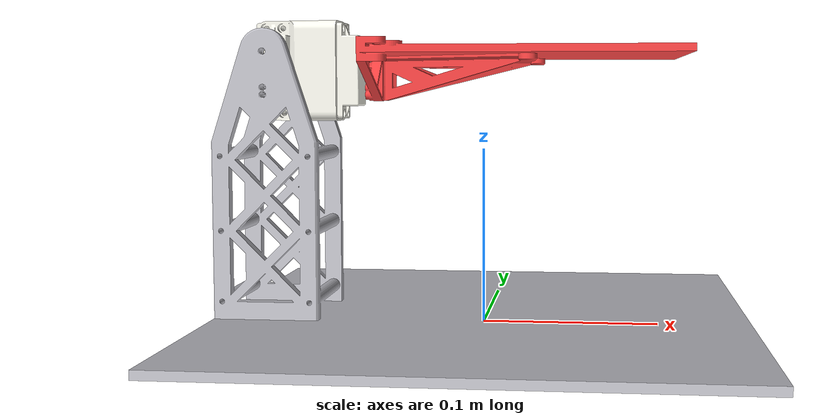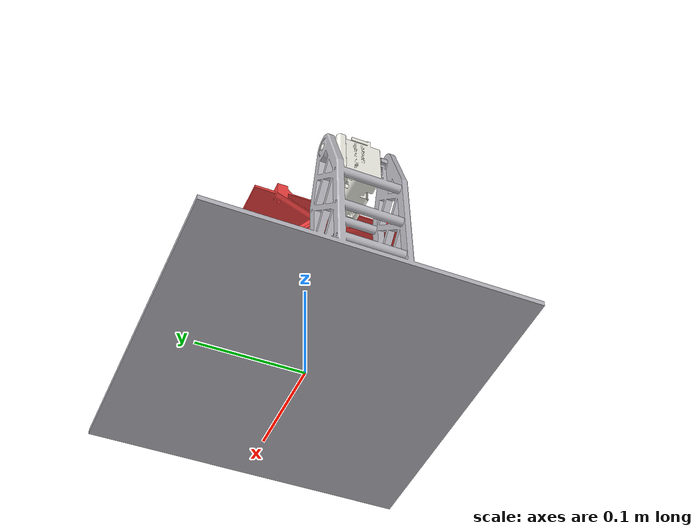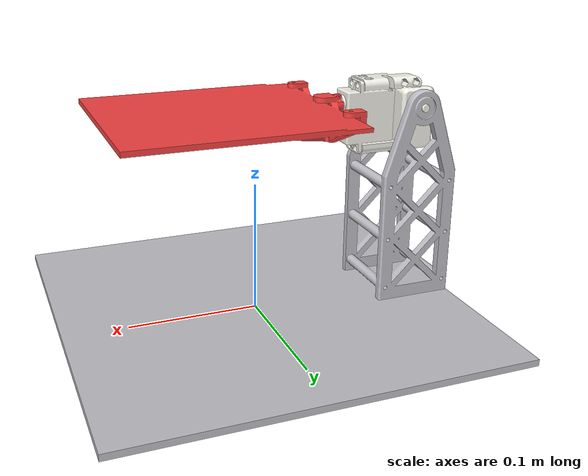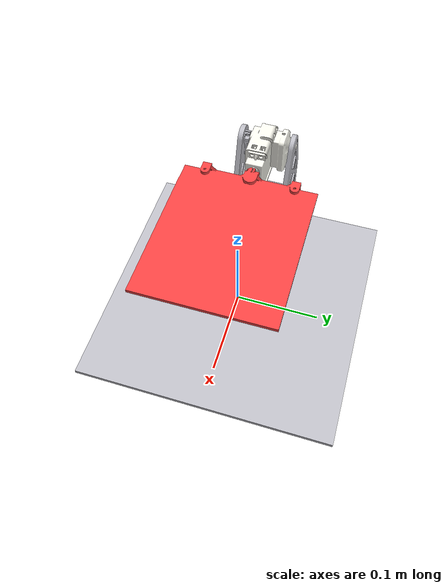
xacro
<?xml version="1.0" ?>
<robot name="assembly_v3" xmlns:xacro="http://www.ros.org/wiki/xacro">

<xacro:include filename="$(find assembly_v3_description)/urdf/materials.xacro" />
<xacro:include filename="$(find assembly_v3_description)/urdf/assembly_v3.trans" />
<xacro:include filename="$(find assembly_v3_description)/urdf/assembly_v3.gazebo" />
<link name="base_link">
  <inertial>
    <origin xyz="-0.018038652100304704 -0.00017758954956431254 0.013671035490042092" rpy="0 0 0"/>
    <mass value="4.157460190208279"/>
    <inertia ixx="0.031263" iyy="0.038664" izz="0.061354" ixy="-7.5e-05" iyz="9.2e-05" ixz="0.004735"/>
  </inertial>
  <visual>
    <origin xyz="0 0 0" rpy="0 0 0"/>
    <geometry>
      <mesh filename="package://assembly_v3_description/meshes/base_link.stl" scale="0.001 0.001 0.001"/>
    </geometry>
    <material name="mdf_board"/>
  </visual>
  <collision>
    <origin xyz="0 0 0" rpy="0 0 0"/>
    <geometry>
      <mesh filename="package://assembly_v3_description/meshes/base_link.stl" scale="0.001 0.001 0.001"/>
    </geometry>
  </collision>
</link>

<link name="link1_1">
  <inertial>
    <origin xyz="0.014426984058842046 -0.026318821878323344 -0.010199402470144114" rpy="0 0 0"/>
    <mass value="0.2597469748599181"/>
    <inertia ixx="0.000119" iyy="0.000143" izz="0.000101" ixy="2.2e-05" iyz="-2e-06" ixz="1e-06"/>
  </inertial>
  <visual>
    <origin xyz="0.12 -0.0268 -0.155" rpy="0 0 0"/>
    <geometry>
      <mesh filename="package://assembly_v3_description/meshes/link1_1.stl" scale="0.001 0.001 0.001"/>
    </geometry>
    <material name="nylon_66_bianco"/>
  </visual>
  <collision>
    <origin xyz="0.12 -0.0268 -0.155" rpy="0 0 0"/>
    <geometry>
      <mesh filename="package://assembly_v3_description/meshes/link1_1.stl" scale="0.001 0.001 0.001"/>
    </geometry>
  </collision>
</link>

<link name="link2_1">
  <inertial>
    <origin xyz="0.07149085455262151 3.217555747561489e-07 -0.002123257140632745" rpy="0 0 0"/>
    <mass value="0.3365868455209291"/>
    <inertia ixx="0.00053" iyy="0.000999" izz="0.001508" ixy="0.0" iyz="0.0" ixz="-3.8e-05"/>
  </inertial>
  <visual>
    <origin xyz="0.0645 0.002749 -0.155" rpy="0 0 0"/>
    <geometry>
      <mesh filename="package://assembly_v3_description/meshes/link2_1.stl" scale="0.001 0.001 0.001"/>
    </geometry>
    <material name="opaque2476666"/>
  </visual>
  <collision>
    <origin xyz="0.0645 0.002749 -0.155" rpy="0 0 0"/>
    <geometry>
      <mesh filename="package://assembly_v3_description/meshes/link2_1.stl" scale="0.001 0.001 0.001"/>
    </geometry>
  </collision>
</link>

<joint name="Rivoluzione 16" type="continuous">
  <origin xyz="-0.12 0.0268 0.155" rpy="0 0 0"/>
  <parent link="base_link"/>
  <child link="link1_1"/>
  <axis xyz="-0.0 -1.0 -0.0"/>
</joint>

<joint name="Rivoluzione 17" type="continuous">
  <origin xyz="0.0555 -0.029549 0.0" rpy="0 0 0"/>
  <parent link="link1_1"/>
  <child link="link2_1"/>
  <axis xyz="1.0 0.0 -0.0"/>
</joint>

</robot>

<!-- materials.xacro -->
<robot name="assembly_v3" xmlns:xacro="http://www.ros.org/wiki/xacro" >

<material name="silver_default">
  <color rgba="0.700 0.700 0.700 1.000"/>
</material>
<material name="nylon_66_bianco">
  <color rgba="0.9725490196078431 0.9686274509803922 0.9294117647058824 1.0"/>
</material>
<material name="opaque2476666">
  <color rgba="0.9686274509803922 0.25882352941176473 0.25882352941176473 1.0"/>
</material>

</robot>

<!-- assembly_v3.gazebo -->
<robot name="assembly_v3" xmlns:xacro="http://www.ros.org/wiki/xacro" >

<xacro:property name="body_color" value="Gazebo/Silver" />

<gazebo>
  <plugin name="control" filename="libgazebo_ros_control.so"/>
</gazebo>
<gazebo reference="base_link">
  <material>${body_color}</material>
  <mu1>0.2</mu1>
  <mu2>0.2</mu2>
  <selfCollide>true</selfCollide>
  <gravity>true</gravity>
</gazebo>

<gazebo reference="link1_1">
  <material>${body_color}</material>
  <mu1>0.2</mu1>
  <mu2>0.2</mu2>
  <selfCollide>true</selfCollide>
</gazebo>

<gazebo reference="link2_1">
  <material>${body_color}</material>
  <mu1>0.2</mu1>
  <mu2>0.2</mu2>
  <selfCollide>true</selfCollide>
</gazebo>

</robot>
